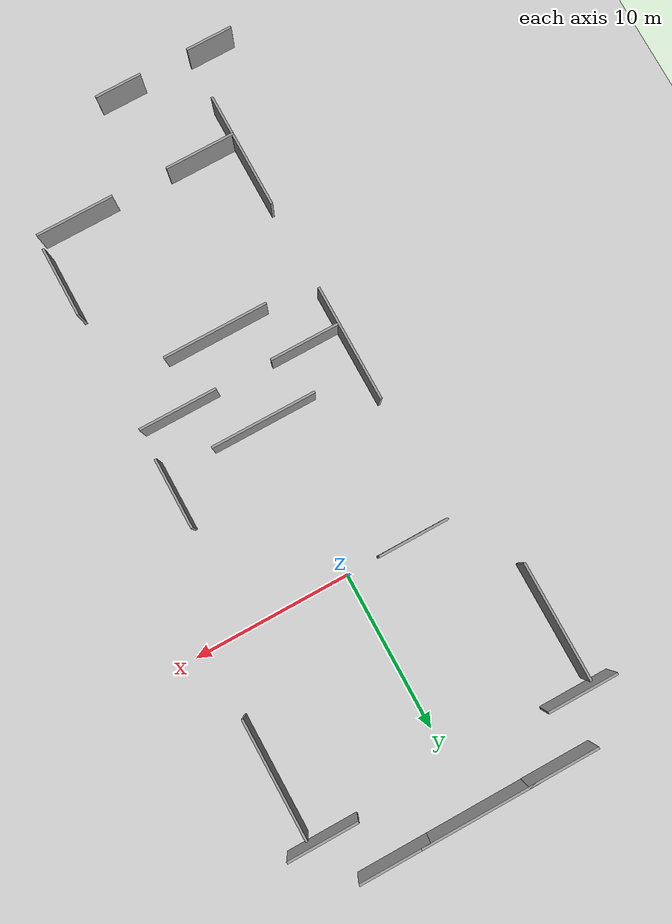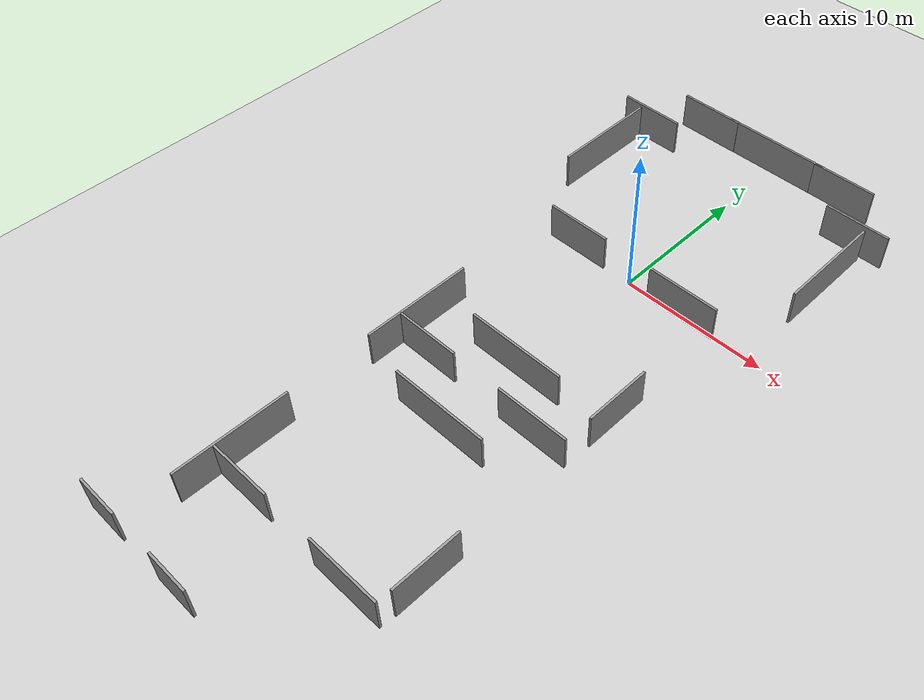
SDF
<sdf version="1.7">
 <world name="world">
  <plugin name="gazebo_ros_state" filename="libgazebo_ros_state.so">
   <ros>
    <namespace>/demo</namespace>
    <remapping>model_states:=model_states_demo</remapping>
    <remapping>link_states:=link_states_demo</remapping>
   </ros>
   <update_rate>1.0</update_rate>
  </plugin>
  <gravity>0 0 -9.8</gravity>
  <physics name="default_physics" default="0" type="ode">
   <max_step_size>0.001</max_step_size>
   <real_time_factor>1</real_time_factor>
   <real_time_update_rate>1000</real_time_update_rate>
  </physics>
  <scene><ambient>0.6 0.6 0.6 1</ambient><background>0.4 0.4 0.4 1</background><shadows>0</shadows></scene>
  <light name="sun" type="directional">
   <pose>0 0 10 0 -0 0</pose>
   <diffuse>0.8 0.8 0.8 1</diffuse>
   <specular>0.2 0.2 0.2 1</specular>
   <attenuation>
    <range>1000</range>
    <constant>0.9</constant>
    <linear>0.01</linear>
    <quadratic>0.001</quadratic>
   </attenuation>
   <direction>-0.5 0.1 -0.9</direction>
   <spot><inner_angle>0</inner_angle><outer_angle>0</outer_angle><falloff>0</falloff></spot>
  </light>
  <model name="ground_plane">
   <static>1</static>
   <link name="link">
    <collision name="collision">
     <geometry><plane><normal>0 0 1</normal><size>100 100</size></plane></geometry>
     <surface><friction><ode><mu>100</mu><mu2>50</mu2></ode></friction></surface>
    </collision>
    <visual name="visual">
     <cast_shadows>0</cast_shadows>
     <geometry><plane><normal>0 0 1</normal><size>100 100</size></plane></geometry>
     <material>
      <script><uri>file://media/materials/scripts/gazebo.material</uri><name>Gazebo/Grey</name></script>
     </material>
    </visual>
   </link>
   <pose>0 0 -0.1 0 -0 0</pose>
  </model>
  <magnetic_field>6e-06 2.3e-05 -4.2e-05</magnetic_field>
  <atmosphere type="adiabatic"/>
  <audio><device>default</device></audio>
  <spherical_coordinates>
   <surface_model>EARTH_WGS84</surface_model>
   <latitude_deg>0</latitude_deg>
   <longitude_deg>0</longitude_deg>
   <elevation>0</elevation>
   <heading_deg>0</heading_deg>
  </spherical_coordinates>
  <model name="Untitled">
   <pose>0.00869 -0.068245 0 0 -0 0</pose>
   <link name="Wall_4">
    <collision name="Wall_4_Collision">
     <geometry><box><size>4.5 0.15 2.5</size></box></geometry>
     <pose>0 0 1.25 0 -0 0</pose>
    </collision>
    <visual name="Wall_4_Visual">
     <pose>0 0 1.25 0 -0 0</pose>
     <geometry><box><size>4.5 0.15 2.5</size></box></geometry>
     <material>
      <script><uri>file://media/materials/scripts/gazebo.material</uri><name>Gazebo/Grey</name></script>
      <ambient>1 1 1 1</ambient>
     </material>
     <meta><layer>0</layer></meta>
    </visual>
    <pose>-4.28276 0.018847 0 0 -0 3.14159</pose>
   </link>
   <link name="Wall_6">
    <collision name="Wall_6_Collision">
     <geometry><box><size>5 0.15 2.5</size></box></geometry>
     <pose>0 0 1.25 0 -0 0</pose>
    </collision>
    <visual name="Wall_6_Visual">
     <pose>0 0 1.25 0 -0 0</pose>
     <geometry><box><size>5 0.15 2.5</size></box></geometry>
     <material>
      <script><uri>file://media/materials/scripts/gazebo.material</uri><name>Gazebo/Grey</name></script>
      <ambient>1 1 1 1</ambient>
     </material>
     <meta><layer>0</layer></meta>
    </visual>
    <pose>4.03276 -0.018847 0 0 -0 3.14159</pose>
   </link>
   <static>1</static>
  </model>
  <model name="Untitled_0">
   <pose>4.54869 5.82236 0 0 -0 0</pose>
   <link name="Wall_8">
    <collision name="Wall_8_Collision">
     <geometry><box><size>7.5 0.15 2.5</size></box></geometry>
     <pose>0 0 1.25 0 -0 0</pose>
    </collision>
    <visual name="Wall_8_Visual">
     <pose>0 0 1.25 0 -0 0</pose>
     <geometry><box><size>7.5 0.15 2.5</size></box></geometry>
     <material>
      <script><uri>file://media/materials/scripts/gazebo.material</uri><name>Gazebo/Grey</name></script>
      <ambient>1 1 1 1</ambient>
     </material>
     <meta><layer>0</layer></meta>
    </visual>
    <pose>4.47369 2.07236 0 0 -0 1.5708</pose>
   </link>
   <static>1</static>
  </model>
  <model name="Untitled_1">
   <pose>5.25682 6.08472 0 0 -0 0</pose>
   <link name="Wall_14">
    <collision name="Wall_14_Collision">
     <geometry><box><size>4.5 0.15 2.5</size></box></geometry>
     <pose>0 0 1.25 0 -0 0</pose>
    </collision>
    <visual name="Wall_14_Visual">
     <pose>0 0 1.25 0 -0 0</pose>
     <geometry><box><size>4.5 0.15 2.5</size></box></geometry>
     <material>
      <script><uri>file://media/materials/scripts/gazebo.material</uri><name>Gazebo/Grey</name></script>
      <ambient>1 1 1 1</ambient>
     </material>
     <meta><layer>0</layer></meta>
    </visual>
    <pose>3.00682 6.00968 0 0 -0 3.14159</pose>
   </link>
   <static>1</static>
  </model>
  <model name="Untitled_1_clone">
   <pose>-11.3255 6.02022 0 0 -0 0</pose>
   <link name="Wall_14">
    <collision name="Wall_14_Collision">
     <geometry><box><size>4.5 0.15 2.5</size></box></geometry>
     <pose>0 0 1.25 0 -0 0</pose>
    </collision>
    <visual name="Wall_14_Visual">
     <pose>0 0 1.25 0 -0 0</pose>
     <geometry><box><size>4.5 0.15 2.5</size></box></geometry>
     <material>
      <script><uri>file://media/materials/scripts/gazebo.material</uri><name>Gazebo/Grey</name></script>
      <ambient>1 1 1 1</ambient>
     </material>
     <meta><layer>0</layer></meta>
    </visual>
    <pose>3.00682 6.00968 0 0 -0 3.14159</pose>
   </link>
   <static>1</static>
  </model>
  <model name="Untitled_0_clone">
   <pose>-13.5298 5.86046 0 0 -0 0</pose>
   <link name="Wall_8">
    <collision name="Wall_8_Collision">
     <geometry><box><size>7.5 0.15 2.5</size></box></geometry>
     <pose>0 0 1.25 0 -0 0</pose>
    </collision>
    <visual name="Wall_8_Visual">
     <pose>0 0 1.25 0 -0 0</pose>
     <geometry><box><size>7.5 0.15 2.5</size></box></geometry>
     <material>
      <script><uri>file://media/materials/scripts/gazebo.material</uri><name>Gazebo/Grey</name></script>
      <ambient>1 1 1 1</ambient>
     </material>
     <meta><layer>0</layer></meta>
    </visual>
    <pose>4.47369 2.07236 0 0 -0 1.5708</pose>
   </link>
   <static>1</static>
  </model>
  <model name="Untitled_1_clone_clone">
   <pose>-8.35591 9.00242 0 0 -0 0</pose>
   <link name="Wall_14">
    <collision name="Wall_14_Collision">
     <geometry><box><size>4.5 0.15 2.5</size></box></geometry>
     <pose>0 0 1.25 0 -0 0</pose>
    </collision>
    <visual name="Wall_14_Visual">
     <pose>0 0 1.25 0 -0 0</pose>
     <geometry><box><size>4.5 0.15 2.5</size></box></geometry>
     <material>
      <script><uri>file://media/materials/scripts/gazebo.material</uri><name>Gazebo/Grey</name></script>
      <ambient>1 1 1 1</ambient>
     </material>
     <meta><layer>0</layer></meta>
    </visual>
    <pose>3.00682 6.00968 0 0 -0 3.14159</pose>
   </link>
   <static>1</static>
  </model>
  <model name="Untitled_1_clone_clone_0">
   <pose>2.34858 9.01452 0 0 -0 0</pose>
   <link name="Wall_14">
    <collision name="Wall_14_Collision">
     <geometry><box><size>4.5 0.15 2.5</size></box></geometry>
     <pose>0 0 1.25 0 -0 0</pose>
    </collision>
    <visual name="Wall_14_Visual">
     <pose>0 0 1.25 0 -0 0</pose>
     <geometry><box><size>4.5 0.15 2.5</size></box></geometry>
     <material>
      <script><uri>file://media/materials/scripts/gazebo.material</uri><name>Gazebo/Grey</name></script>
      <ambient>1 1 1 1</ambient>
     </material>
     <meta><layer>0</layer></meta>
    </visual>
    <pose>3.00682 6.00968 0 0 -0 3.14159</pose>
   </link>
   <static>1</static>
  </model>
  <model name="Untitled_2">
   <pose>-0.049746 8.5385 0 0 -0 0</pose>
   <link name="Wall_0">
    <collision name="Wall_0_Collision">
     <geometry><box><size>7.5 0.15 2.5</size></box></geometry>
     <pose>0 0 1.25 0 -0 0</pose>
    </collision>
    <visual name="Wall_0_Visual">
     <pose>0 0 1.25 0 -0 0</pose>
     <geometry><box><size>7.5 0.15 2.5</size></box></geometry>
     <material>
      <script><uri>file://media/materials/scripts/gazebo.material</uri><name>Gazebo/Grey</name></script>
      <ambient>1 1 1 1</ambient>
     </material>
     <meta><layer>0</layer></meta>
    </visual>
    <pose>-0 6.486 0 0 -0 0</pose>
   </link>
   <static>1</static>
  </model>
  <model name="Untitled_1_clone_0">
   <pose>0.501606 -5.80443 0 0 0 -1.5714</pose>
   <link name="Wall_14">
    <collision name="Wall_14_Collision">
     <geometry><box><size>4.5 0.15 2.5</size></box></geometry>
     <pose>0 0 1.25 0 -0 0</pose>
    </collision>
    <visual name="Wall_14_Visual">
     <pose>0 0 1.25 0 -0 0</pose>
     <geometry><box><size>4.5 0.15 2.5</size></box></geometry>
     <material>
      <script><uri>file://media/materials/scripts/gazebo.material</uri><name>Gazebo/Grey</name></script>
      <ambient>1 1 1 1</ambient>
     </material>
     <meta><layer>0</layer></meta>
    </visual>
    <pose>3.00682 6.00968 0 0 -0 3.14159</pose>
   </link>
   <static>1</static>
  </model>
  <model name="Untitled_3">
   <pose>-0.009604 -5.20203 0 0 -0 0</pose>
   <link name="Wall_0">
    <collision name="Wall_0_Collision">
     <geometry><box><size>6.75 0.15 2.5</size></box></geometry>
     <pose>0 0 1.25 0 -0 0</pose>
    </collision>
    <visual name="Wall_0_Visual">
     <pose>0 0 1.25 0 -0 0</pose>
     <geometry><box><size>6.75 0.15 2.5</size></box></geometry>
     <material>
      <script><uri>file://media/materials/scripts/gazebo.material</uri><name>Gazebo/Grey</name></script>
      <ambient>1 1 1 1</ambient>
     </material>
     <meta><layer>0</layer></meta>
    </visual>
    <pose>-0 -4.89007 0 0 -0 0</pose>
   </link>
   <static>1</static>
  </model>
  <model name="Untitled_3_clone">
   <pose>-0.02721 -11.1534 0 0 -0 0</pose>
   <link name="Wall_0">
    <collision name="Wall_0_Collision">
     <geometry><box><size>6.75 0.15 2.5</size></box></geometry>
     <pose>0 0 1.25 0 -0 0</pose>
    </collision>
    <visual name="Wall_0_Visual">
     <pose>0 0 1.25 0 -0 0</pose>
     <geometry><box><size>6.75 0.15 2.5</size></box></geometry>
     <material>
      <script><uri>file://media/materials/scripts/gazebo.material</uri><name>Gazebo/Grey</name></script>
      <ambient>1 1 1 1</ambient>
     </material>
     <meta><layer>0</layer></meta>
    </visual>
    <pose>-0 -4.89007 0 0 -0 0</pose>
   </link>
   <static>1</static>
  </model>
  <model name="Untitled_1_clone_0_clone">
   <pose>0.505286 -19.9178 0 0 0 -1.5714</pose>
   <link name="Wall_14">
    <collision name="Wall_14_Collision">
     <geometry><box><size>4.5 0.15 2.5</size></box></geometry>
     <pose>0 0 1.25 0 -0 0</pose>
    </collision>
    <visual name="Wall_14_Visual">
     <pose>0 0 1.25 0 -0 0</pose>
     <geometry><box><size>4.5 0.15 2.5</size></box></geometry>
     <material>
      <script><uri>file://media/materials/scripts/gazebo.material</uri><name>Gazebo/Grey</name></script>
      <ambient>1 1 1 1</ambient>
     </material>
     <meta><layer>0</layer></meta>
    </visual>
    <pose>3.00682 6.00968 0 0 -0 3.14159</pose>
   </link>
   <static>1</static>
  </model>
  <model name="Untitled_clone">
   <pose>-0.00668 -12.9772 0 0 -0 0</pose>
   <link name="Wall_4">
    <collision name="Wall_4_Collision">
     <geometry><box><size>4.5 0.15 2.5</size></box></geometry>
     <pose>0 0 1.25 0 -0 0</pose>
    </collision>
    <visual name="Wall_4_Visual">
     <pose>0 0 1.25 0 -0 0</pose>
     <geometry><box><size>4.5 0.15 2.5</size></box></geometry>
     <material>
      <script><uri>file://media/materials/scripts/gazebo.material</uri><name>Gazebo/Grey</name></script>
      <ambient>1 1 1 1</ambient>
     </material>
     <meta><layer>0</layer></meta>
    </visual>
    <pose>-4.28276 0.018847 0 0 -0 3.14159</pose>
   </link>
   <link name="Wall_6">
    <collision name="Wall_6_Collision">
     <geometry><box><size>5 0.15 2.5</size></box></geometry>
     <pose>0 0 1.25 0 -0 0</pose>
    </collision>
    <visual name="Wall_6_Visual">
     <pose>0 0 1.25 0 -0 0</pose>
     <geometry><box><size>5 0.15 2.5</size></box></geometry>
     <material>
      <script><uri>file://media/materials/scripts/gazebo.material</uri><name>Gazebo/Grey</name></script>
      <ambient>1 1 1 1</ambient>
     </material>
     <meta><layer>0</layer></meta>
    </visual>
    <pose>4.03276 -0.018847 0 0 -0 3.14159</pose>
   </link>
   <static>1</static>
  </model>
  <model name="Untitled_0_clone_clone">
   <pose>-11.0041 -13.7156 0 0 -0 0</pose>
   <link name="Wall_8">
    <collision name="Wall_8_Collision">
     <geometry><box><size>7.5 0.15 2.5</size></box></geometry>
     <pose>0 0 1.25 0 -0 0</pose>
    </collision>
    <visual name="Wall_8_Visual">
     <pose>0 0 1.25 0 -0 0</pose>
     <geometry><box><size>7.5 0.15 2.5</size></box></geometry>
     <material>
      <script><uri>file://media/materials/scripts/gazebo.material</uri><name>Gazebo/Grey</name></script>
      <ambient>1 1 1 1</ambient>
     </material>
     <meta><layer>0</layer></meta>
    </visual>
    <pose>4.47369 2.07236 0 0 -0 1.5708</pose>
   </link>
   <static>1</static>
  </model>
  <model name="Untitled_0_clone_clone_0">
   <pose>-11.0082 -26.9661 0 0 -0 0</pose>
   <link name="Wall_8">
    <collision name="Wall_8_Collision">
     <geometry><box><size>7.5 0.15 2.5</size></box></geometry>
     <pose>0 0 1.25 0 -0 0</pose>
    </collision>
    <visual name="Wall_8_Visual">
     <pose>0 0 1.25 0 -0 0</pose>
     <geometry><box><size>7.5 0.15 2.5</size></box></geometry>
     <material>
      <script><uri>file://media/materials/scripts/gazebo.material</uri><name>Gazebo/Grey</name></script>
      <ambient>1 1 1 1</ambient>
     </material>
     <meta><layer>0</layer></meta>
    </visual>
    <pose>4.47369 2.07236 0 0 -0 1.5708</pose>
   </link>
   <static>1</static>
  </model>
  <model name="Untitled_clone_clone">
   <pose>-0.05236 -26.064 0 0 -0 0</pose>
   <link name="Wall_4">
    <collision name="Wall_4_Collision">
     <geometry><box><size>4.5 0.15 2.5</size></box></geometry>
     <pose>0 0 1.25 0 -0 0</pose>
    </collision>
    <visual name="Wall_4_Visual">
     <pose>0 0 1.25 0 -0 0</pose>
     <geometry><box><size>4.5 0.15 2.5</size></box></geometry>
     <material>
      <script><uri>file://media/materials/scripts/gazebo.material</uri><name>Gazebo/Grey</name></script>
      <ambient>1 1 1 1</ambient>
     </material>
     <meta><layer>0</layer></meta>
    </visual>
    <pose>-4.28276 0.018847 0 0 -0 3.14159</pose>
   </link>
   <link name="Wall_6">
    <collision name="Wall_6_Collision">
     <geometry><box><size>5 0.15 2.5</size></box></geometry>
     <pose>0 0 1.25 0 -0 0</pose>
    </collision>
    <visual name="Wall_6_Visual">
     <pose>0 0 1.25 0 -0 0</pose>
     <geometry><box><size>5 0.15 2.5</size></box></geometry>
     <material>
      <script><uri>file://media/materials/scripts/gazebo.material</uri><name>Gazebo/Grey</name></script>
      <ambient>1 1 1 1</ambient>
     </material>
     <meta><layer>0</layer></meta>
    </visual>
    <pose>4.03276 -0.018847 0 0 -0 3.14159</pose>
   </link>
   <static>1</static>
  </model>
  <model name="Untitled_4">
   <pose>-1.86984 -16.8358 0 0 -0 0</pose>
   <link name="Wall_0">
    <collision name="Wall_0_Collision">
     <geometry><box><size>3 0.15 2.5</size></box></geometry>
     <pose>0 0 1.25 0 -0 0</pose>
    </collision>
    <visual name="Wall_0_Visual">
     <pose>0 0 1.25 0 -0 0</pose>
     <geometry><box><size>3 0.15 2.5</size></box></geometry>
     <material>
      <script><uri>file://media/materials/scripts/gazebo.material</uri><name>Gazebo/Grey</name></script>
      <ambient>1 1 1 1</ambient>
     </material>
     <meta><layer>0</layer></meta>
    </visual>
    <pose>-0.086673 -15.1376 0 0 -0 0</pose>
   </link>
   <static>1</static>
  </model>
  <model name="Untitled_4_clone">
   <pose>-8.02225 -16.8543 0 0 -0 0</pose>
   <link name="Wall_0">
    <collision name="Wall_0_Collision">
     <geometry><box><size>3 0.15 2.5</size></box></geometry>
     <pose>0 0 1.25 0 -0 0</pose>
    </collision>
    <visual name="Wall_0_Visual">
     <pose>0 0 1.25 0 -0 0</pose>
     <geometry><box><size>3 0.15 2.5</size></box></geometry>
     <material>
      <script><uri>file://media/materials/scripts/gazebo.material</uri><name>Gazebo/Grey</name></script>
      <ambient>1 1 1 1</ambient>
     </material>
     <meta><layer>0</layer></meta>
    </visual>
    <pose>-0.086673 -15.1376 0 0 -0 0</pose>
   </link>
   <static>1</static>
  </model>
 </world>
</sdf>
